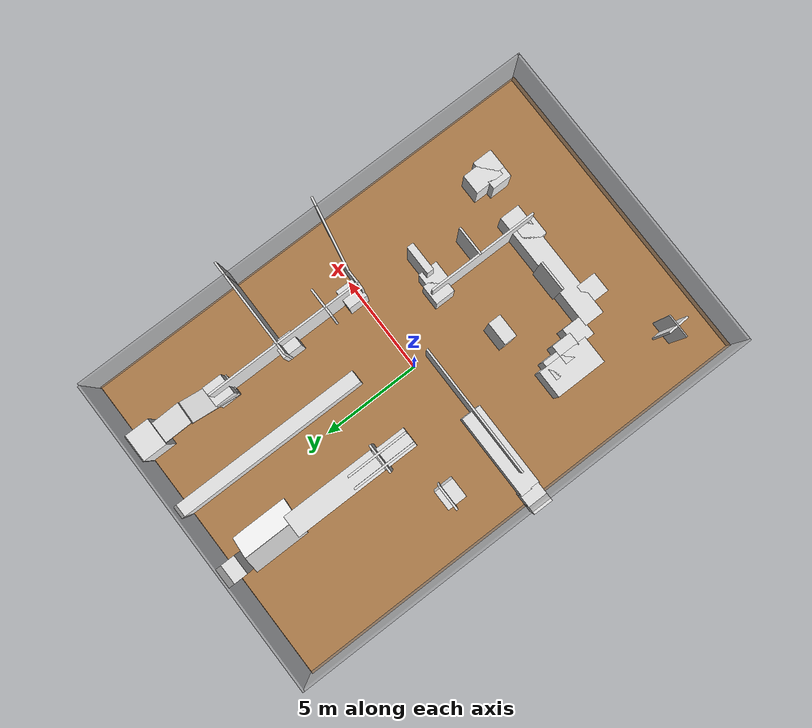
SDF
<sdf version="1.7">
 <world name="default">
  <model name="box_1">
   <pose>0.05 -12.05 1.25 0 -0 0</pose>
   <static>1</static>
   <link name="link">
    <collision name="collision"><geometry><box><size>16.1 0.1 2.5</size></box></geometry></collision>
    <visual name="visual">
     <geometry><box><size>16.1 0.1 2.5</size></box></geometry>
     <material>
      <script><name>Gazebo/GreyTransparent</name><uri>file://media/materials/scripts/gazebo.material</uri></script>
     </material>
    </visual>
   </link>
  </model>
  <model name="box_2">
   <pose>8.06174 -0.026302 1.25 0 -0 0</pose>
   <static>1</static>
   <link name="link">
    <collision name="collision"><geometry><box><size>0.1 24.1 2.5</size></box></geometry></collision>
    <visual name="visual">
     <geometry><box><size>0.1 24.1 2.5</size></box></geometry>
     <material>
      <script><name>Gazebo/GreyTransparent</name><uri>file://media/materials/scripts/gazebo.material</uri></script>
     </material>
    </visual>
   </link>
  </model>
  <model name="box_3">
   <pose>-0.05 12.05 1.25 0 -0 0</pose>
   <static>1</static>
   <link name="link">
    <collision name="collision"><geometry><box><size>16.1 0.1 2.5</size></box></geometry></collision>
    <visual name="visual">
     <geometry><box><size>16.1 0.1 2.5</size></box></geometry>
     <material>
      <script><name>Gazebo/GreyTransparent</name><uri>file://media/materials/scripts/gazebo.material</uri></script>
     </material>
    </visual>
   </link>
  </model>
  <model name="box_4">
   <pose>-8.05 -0.05 1.25 0 -0 0</pose>
   <static>1</static>
   <link name="link">
    <collision name="collision"><geometry><box><size>0.1 24.1 2.5</size></box></geometry></collision>
    <visual name="visual">
     <geometry><box><size>0.1 24.1 2.5</size></box></geometry>
     <material>
      <script><name>Gazebo/GreyTransparent</name><uri>file://media/materials/scripts/gazebo.material</uri></script>
     </material>
    </visual>
   </link>
  </model>
  <model name="box_5">
   <pose>-0.014534 -0.091603 -0.05 0 -0 0</pose>
   <static>1</static>
   <link name="link">
    <collision name="collision"><geometry><box><size>16.2 24.2 0.1</size></box></geometry></collision>
    <visual name="visual">
     <geometry><box><size>16.2 24.2 0.1</size></box></geometry>
     <material>
      <script><name>Gazebo/WoodFloor</name><uri>file://media/materials/scripts/gazebo.material</uri></script>
     </material>
    </visual>
   </link>
  </model>
  <model name="box_8_clone">
   <pose>6.73576 -0.524414 1.25 0 0 -0.191358</pose>
   <static>1</static>
   <link name="link">
    <collision name="collision"><geometry><box><size>3.67087 0.1 2.5</size></box></geometry></collision>
    <visual name="visual">
     <geometry><box><size>3.67087 0.1 2.5</size></box></geometry>
     <material>
      <script><name>Gazebo/White</name><uri>file://media/materials/scripts/gazebo.material</uri></script>
     </material>
    </visual>
   </link>
  </model>
  <model name="box_9_clone_clone_0">
   <pose>-2.15604 -8.36183 0.75 0 -0 0</pose>
   <static>1</static>
   <link name="link">
    <collision name="collision"><geometry><box><size>1 1 1.5</size></box></geometry></collision>
    <visual name="visual">
     <geometry><box><size>1 1 1.5</size></box></geometry>
     <material>
      <script><name>Gazebo/White</name><uri>file://media/materials/scripts/gazebo.material</uri></script>
     </material>
    </visual>
   </link>
  </model>
  <model name="box_9_clone_clone_1">
   <pose>-0.214525 -7.57962 0.75 0 -0 0</pose>
   <static>1</static>
   <link name="link">
    <collision name="collision"><geometry><box><size>6.13337 1 1.5</size></box></geometry></collision>
    <visual name="visual">
     <geometry><box><size>6.13337 1 1.5</size></box></geometry>
     <material>
      <script><name>Gazebo/White</name><uri>file://media/materials/scripts/gazebo.material</uri></script>
     </material>
    </visual>
   </link>
  </model>
  <model name="box_9_clone_clone_2">
   <pose>-3.28595 -6.65197 0.75 0 -0 0</pose>
   <static>1</static>
   <link name="link">
    <collision name="collision"><geometry><box><size>1 1 1.5</size></box></geometry></collision>
    <visual name="visual">
     <geometry><box><size>1 1 1.5</size></box></geometry>
     <material>
      <script><name>Gazebo/White</name><uri>file://media/materials/scripts/gazebo.material</uri></script>
     </material>
    </visual>
   </link>
  </model>
  <model name="box_9_clone_clone_3">
   <pose>5.12025 -8.17677 0.75 0 -0 0</pose>
   <static>1</static>
   <link name="link">
    <collision name="collision"><geometry><box><size>1 1 1.5</size></box></geometry></collision>
    <visual name="visual">
     <geometry><box><size>1 1 1.5</size></box></geometry>
     <material>
      <script><name>Gazebo/White</name><uri>file://media/materials/scripts/gazebo.material</uri></script>
     </material>
    </visual>
   </link>
  </model>
  <model name="box_9_clone_clone_4">
   <pose>4.90057 -7.68592 0.75 0 -0 0</pose>
   <static>1</static>
   <link name="link">
    <collision name="collision"><geometry><box><size>1 1.46842 1.5</size></box></geometry></collision>
    <visual name="visual">
     <geometry><box><size>1 1.46842 1.5</size></box></geometry>
     <material>
      <script><name>Gazebo/White</name><uri>file://media/materials/scripts/gazebo.material</uri></script>
     </material>
    </visual>
   </link>
  </model>
  <model name="box_8_clone_clone_13_clone_clone_clone_clone_0">
   <pose>3.45255 -2.97258 1.25 0 -0 0</pose>
   <static>1</static>
   <link name="link">
    <collision name="collision"><geometry><box><size>1.46461 0.344025 2.5</size></box></geometry></collision>
    <visual name="visual">
     <geometry><box><size>1.46461 0.344025 2.5</size></box></geometry>
     <material>
      <script><name>Gazebo/White</name><uri>file://media/materials/scripts/gazebo.material</uri></script>
     </material>
    </visual>
   </link>
  </model>
  <model name="box_8_clone_clone_11_clone">
   <pose>-1.19486 -3.87817 1.25 0 -0 0</pose>
   <static>1</static>
   <link name="link">
    <collision name="collision"><geometry><box><size>1.16351 0.640021 2.5</size></box></geometry></collision>
    <visual name="visual">
     <geometry><box><size>1.16351 0.640021 2.5</size></box></geometry>
     <material>
      <script><name>Gazebo/White</name><uri>file://media/materials/scripts/gazebo.material</uri></script>
     </material>
    </visual>
   </link>
  </model>
  <model name="box_8_clone_clone_4_clone_2">
   <pose>-5.45875 2.39293 1.25 0 -0 0</pose>
   <static>1</static>
   <link name="link">
    <collision name="collision"><geometry><box><size>1.26584 0.1 2.5</size></box></geometry></collision>
    <visual name="visual">
     <geometry><box><size>1.26584 0.1 2.5</size></box></geometry>
     <material>
      <script><name>Gazebo/White</name><uri>file://media/materials/scripts/gazebo.material</uri></script>
     </material>
    </visual>
   </link>
  </model>
  <model name="box_9_clone_clone_7_clone">
   <pose>-5.47252 2.23106 0.75 0 -0 0</pose>
   <static>1</static>
   <link name="link">
    <collision name="collision"><geometry><box><size>1 1 1.5</size></box></geometry></collision>
    <visual name="visual">
     <geometry><box><size>1 1 1.5</size></box></geometry>
     <material>
      <script><name>Gazebo/White</name><uri>file://media/materials/scripts/gazebo.material</uri></script>
     </material>
    </visual>
   </link>
  </model>
  <model name="box_9_clone_clone_7_clone_clone">
   <pose>-7.89766 -0.627489 0.75 0 -0 0</pose>
   <static>1</static>
   <link name="link">
    <collision name="collision"><geometry><box><size>1 1 1.5</size></box></geometry></collision>
    <visual name="visual">
     <geometry><box><size>1 1 1.5</size></box></geometry>
     <material>
      <script><name>Gazebo/White</name><uri>file://media/materials/scripts/gazebo.material</uri></script>
     </material>
    </visual>
   </link>
  </model>
  <model name="box_9_clone_clone_7_clone_clone_3">
   <pose>-4.34563 -5.4456 0.75 0 -0 0</pose>
   <static>1</static>
   <link name="link">
    <collision name="collision"><geometry><box><size>1.3917 2.57973 1.5</size></box></geometry></collision>
    <visual name="visual">
     <geometry><box><size>1.3917 2.57973 1.5</size></box></geometry>
     <material>
      <script><name>Gazebo/White</name><uri>file://media/materials/scripts/gazebo.material</uri></script>
     </material>
    </visual>
   </link>
  </model>
  <model name="box_9_clone_clone_7_clone_clone_4">
   <pose>-3.89333 -5.04613 0.75 0 -0 0</pose>
   <static>1</static>
   <link name="link">
    <collision name="collision"><geometry><box><size>1 1 1.5</size></box></geometry></collision>
    <visual name="visual">
     <geometry><box><size>1 1 1.5</size></box></geometry>
     <material>
      <script><name>Gazebo/White</name><uri>file://media/materials/scripts/gazebo.material</uri></script>
     </material>
    </visual>
   </link>
  </model>
  <model name="box_9_clone_clone_7_clone_clone_5">
   <pose>-3.58867 -5.82199 0.75 0 -0 0</pose>
   <static>1</static>
   <link name="link">
    <collision name="collision"><geometry><box><size>1 1 1.5</size></box></geometry></collision>
    <visual name="visual">
     <geometry><box><size>1 1 1.5</size></box></geometry>
     <material>
      <script><name>Gazebo/White</name><uri>file://media/materials/scripts/gazebo.material</uri></script>
     </material>
    </visual>
   </link>
  </model>
  <model name="box_9_clone_clone_5_clone_2_clone_0">
   <pose>4.37795 7.57531 0.75 0 -0 0</pose>
   <static>1</static>
   <link name="link">
    <collision name="collision"><geometry><box><size>1.02973 1 1.5</size></box></geometry></collision>
    <visual name="visual">
     <geometry><box><size>1.02973 1 1.5</size></box></geometry>
     <material>
      <script><name>Gazebo/White</name><uri>file://media/materials/scripts/gazebo.material</uri></script>
     </material>
    </visual>
   </link>
  </model>
  <model name="box_9_clone_clone_5_clone_2_clone_0_clone_0">
   <pose>4.61046 -8.1706 0.75 0 -0 0</pose>
   <static>1</static>
   <link name="link">
    <collision name="collision"><geometry><box><size>1 1 1.5</size></box></geometry></collision>
    <visual name="visual">
     <geometry><box><size>1 1 1.5</size></box></geometry>
     <material>
      <script><name>Gazebo/White</name><uri>file://media/materials/scripts/gazebo.material</uri></script>
     </material>
    </visual>
   </link>
  </model>
  <model name="box_6_clone_clone_4_clone">
   <pose>4.47434 10.5847 1.40455 0 -1.3182 1.53996</pose>
   <static>1</static>
   <link name="link">
    <collision name="collision"><geometry><box><size>0.1 1.08009 2.76392</size></box></geometry></collision>
    <visual name="visual">
     <geometry><box><size>0.1 1.08009 2.76392</size></box></geometry>
     <material>
      <script><name>Gazebo/White</name><uri>file://media/materials/scripts/gazebo.material</uri></script>
     </material>
    </visual>
   </link>
  </model>
  <model name="box_9_clone_clone_7_clone_clone_clone">
   <pose>-5.32159 -0.673379 0.75 0 -0 0</pose>
   <static>1</static>
   <link name="link">
    <collision name="collision"><geometry><box><size>4.25949 1 1.5</size></box></geometry></collision>
    <visual name="visual">
     <geometry><box><size>4.25949 1 1.5</size></box></geometry>
     <material>
      <script><name>Gazebo/White</name><uri>file://media/materials/scripts/gazebo.material</uri></script>
     </material>
    </visual>
   </link>
  </model>
  <model name="box_8_clone_clone_3_clone">
   <pose>6.25131 4.20674 1.25 0 -0 0</pose>
   <static>1</static>
   <link name="link">
    <collision name="collision"><geometry><box><size>5.04273 0.1 2.5</size></box></geometry></collision>
    <visual name="visual">
     <geometry><box><size>5.04273 0.1 2.5</size></box></geometry>
     <material>
      <script><name>Gazebo/White</name><uri>file://media/materials/scripts/gazebo.material</uri></script>
     </material>
    </visual>
   </link>
  </model>
  <model name="box_9_clone_clone_7_clone_0">
   <pose>1.15259 7.24946 0.75 0 -0 0</pose>
   <static>1</static>
   <link name="link">
    <collision name="collision"><geometry><box><size>0.641484 9.79262 1.5</size></box></geometry></collision>
    <visual name="visual">
     <geometry><box><size>0.641484 9.79262 1.5</size></box></geometry>
     <material>
      <script><name>Gazebo/White</name><uri>file://media/materials/scripts/gazebo.material</uri></script>
     </material>
    </visual>
   </link>
  </model>
  <model name="box_8_clone_clone_3_clone_clone">
   <pose>-2.60171 9.85734 0.157596 -1.58129 -0.379315 0.005532</pose>
   <static>1</static>
   <link name="link">
    <collision name="collision"><geometry><box><size>0.87469 0.1 2.8877</size></box></geometry></collision>
    <visual name="visual">
     <geometry><box><size>0.87469 0.1 2.8877</size></box></geometry>
     <material>
      <script><name>Gazebo/White</name><uri>file://media/materials/scripts/gazebo.material</uri></script>
     </material>
    </visual>
   </link>
  </model>
  <model name="box_9_clone_clone_9_clone">
   <pose>-2.30467 11.7929 0.75 0 -0 0</pose>
   <static>1</static>
   <link name="link">
    <collision name="collision"><geometry><box><size>1 1 1.5</size></box></geometry></collision>
    <visual name="visual">
     <geometry><box><size>1 1 1.5</size></box></geometry>
     <material>
      <script><name>Gazebo/White</name><uri>file://media/materials/scripts/gazebo.material</uri></script>
     </material>
    </visual>
   </link>
  </model>
  <model name="box_6_clone_clone_3_clone_clone_clone">
   <pose>-2.72273 3.70807 1.25 0 -0 0</pose>
   <static>1</static>
   <link name="link">
    <collision name="collision"><geometry><box><size>0.1 3.23033 2.5</size></box></geometry></collision>
    <visual name="visual">
     <geometry><box><size>0.1 3.23033 2.5</size></box></geometry>
     <material>
      <script><name>Gazebo/White</name><uri>file://media/materials/scripts/gazebo.material</uri></script>
     </material>
    </visual>
   </link>
  </model>
  <model name="box_6_clone_clone_3_clone_clone_clone_clone">
   <pose>4.27871 3.81707 1.25 0 -0 0</pose>
   <static>1</static>
   <link name="link">
    <collision name="collision"><geometry><box><size>0.1 8.11445 2.5</size></box></geometry></collision>
    <visual name="visual">
     <geometry><box><size>0.1 8.11445 2.5</size></box></geometry>
     <material>
      <script><name>Gazebo/White</name><uri>file://media/materials/scripts/gazebo.material</uri></script>
     </material>
    </visual>
   </link>
  </model>
  <model name="box_6_clone_clone_3_clone_clone_clone_clone_0">
   <pose>2.0182 -5.31678 1.25 0 -0 0</pose>
   <static>1</static>
   <link name="link">
    <collision name="collision"><geometry><box><size>0.1 5.60332 2.5</size></box></geometry></collision>
    <visual name="visual">
     <geometry><box><size>0.1 5.60332 2.5</size></box></geometry>
     <material>
      <script><name>Gazebo/White</name><uri>file://media/materials/scripts/gazebo.material</uri></script>
     </material>
    </visual>
   </link>
  </model>
  <model name="box_9_clone_clone_5_clone_2_clone_0_clone_clone">
   <pose>2.02272 -2.91858 0.75 0 -0 0</pose>
   <static>1</static>
   <link name="link">
    <collision name="collision"><geometry><box><size>1 1 1.5</size></box></geometry></collision>
    <visual name="visual">
     <geometry><box><size>1 1 1.5</size></box></geometry>
     <material>
      <script><name>Gazebo/White</name><uri>file://media/materials/scripts/gazebo.material</uri></script>
     </material>
    </visual>
   </link>
  </model>
  <model name="box_8_clone_clone">
   <pose>4.67136 -0.169302 1.25 0 -0 0</pose>
   <static>1</static>
   <link name="link">
    <collision name="collision"><geometry><box><size>1.5 0.1 2.5</size></box></geometry></collision>
    <visual name="visual">
     <geometry><box><size>1.5 0.1 2.5</size></box></geometry>
     <material>
      <script><name>Gazebo/White</name><uri>file://media/materials/scripts/gazebo.material</uri></script>
     </material>
    </visual>
   </link>
  </model>
  <model name="box_9_clone_clone_7_clone_clone_0">
   <pose>-2.40805 3.03977 0.75 0 -0 0</pose>
   <static>1</static>
   <link name="link">
    <collision name="collision"><geometry><box><size>1 1.88415 1.5</size></box></geometry></collision>
    <visual name="visual">
     <geometry><box><size>1 1.88415 1.5</size></box></geometry>
     <material>
      <script><name>Gazebo/White</name><uri>file://media/materials/scripts/gazebo.material</uri></script>
     </material>
    </visual>
   </link>
  </model>
  <model name="box_9_clone_clone_5_clone_2_clone_0_clone_0_clone">
   <pose>1.56966 -7.808 0.75 0 -0 0</pose>
   <static>1</static>
   <link name="link">
    <collision name="collision"><geometry><box><size>1 1 1.5</size></box></geometry></collision>
    <visual name="visual">
     <geometry><box><size>1 1 1.5</size></box></geometry>
     <material>
      <script><name>Gazebo/White</name><uri>file://media/materials/scripts/gazebo.material</uri></script>
     </material>
    </visual>
   </link>
  </model>
  <model name="box_9_clone_clone_5_clone_2_clone_clone_clone_0_clone">
   <pose>4.16141 3.94247 0.75 0 -0 0</pose>
   <static>1</static>
   <link name="link">
    <collision name="collision"><geometry><box><size>0.839425 1 1.5</size></box></geometry></collision>
    <visual name="visual">
     <geometry><box><size>0.839425 1 1.5</size></box></geometry>
     <material>
      <script><name>Gazebo/White</name><uri>file://media/materials/scripts/gazebo.material</uri></script>
     </material>
    </visual>
   </link>
  </model>
  <model name="box_9_clone_clone_5_clone_2_clone_clone_clone_0_clone_clone">
   <pose>4.22761 0.292409 0.75 0 -0 0</pose>
   <static>1</static>
   <link name="link">
    <collision name="collision"><geometry><box><size>1 1 1.5</size></box></geometry></collision>
    <visual name="visual">
     <geometry><box><size>1 1 1.5</size></box></geometry>
     <material>
      <script><name>Gazebo/White</name><uri>file://media/materials/scripts/gazebo.material</uri></script>
     </material>
    </visual>
   </link>
  </model>
  <model name="box_6_clone_clone_3_clone_clone_clone_clone_1">
   <pose>-2.14756 3.67113 1.25 0 -0 0.001144</pose>
   <static>1</static>
   <link name="link">
    <collision name="collision"><geometry><box><size>0.1 3.12165 2.5</size></box></geometry></collision>
    <visual name="visual">
     <geometry><box><size>0.1 3.12165 2.5</size></box></geometry>
     <material>
      <script><name>Gazebo/White</name><uri>file://media/materials/scripts/gazebo.material</uri></script>
     </material>
    </visual>
   </link>
  </model>
  <model name="box_9_clone_clone_8_clone_0_clone">
   <pose>-2.3529 6.21978 0.75 0 -0 0</pose>
   <static>1</static>
   <link name="link">
    <collision name="collision"><geometry><box><size>1.12201 4.75321 1.5</size></box></geometry></collision>
    <visual name="visual">
     <geometry><box><size>1.12201 4.75321 1.5</size></box></geometry>
     <material>
      <script><name>Gazebo/White</name><uri>file://media/materials/scripts/gazebo.material</uri></script>
     </material>
    </visual>
   </link>
  </model>
  <model name="box_8_clone_clone_3_clone_clone_clone">
   <pose>-3.21063 -0.77803 1.25 0 -0 0</pose>
   <static>1</static>
   <link name="link">
    <collision name="collision"><geometry><box><size>6.66898 0.1 2.5</size></box></geometry></collision>
    <visual name="visual">
     <geometry><box><size>6.66898 0.1 2.5</size></box></geometry>
     <material>
      <script><name>Gazebo/White</name><uri>file://media/materials/scripts/gazebo.material</uri></script>
     </material>
    </visual>
   </link>
  </model>
  <model name="box_6_clone_clone_4_clone_clone">
   <pose>4.38248 8.16427 1.1171 0 -1.11157 -1.60232</pose>
   <static>1</static>
   <link name="link">
    <collision name="collision"><geometry><box><size>0.1 1.10854 2.5</size></box></geometry></collision>
    <visual name="visual">
     <geometry><box><size>0.1 1.10854 2.5</size></box></geometry>
     <material>
      <script><name>Gazebo/White</name><uri>file://media/materials/scripts/gazebo.material</uri></script>
     </material>
    </visual>
   </link>
  </model>
  <model name="box_9_clone_clone_5_clone_2_clone_0_clone_0_clone_0">
   <pose>2.56687 -3.08492 0.75 0 -0 0</pose>
   <static>1</static>
   <link name="link">
    <collision name="collision"><geometry><box><size>1 1 1.5</size></box></geometry></collision>
    <visual name="visual">
     <geometry><box><size>1 1 1.5</size></box></geometry>
     <material>
      <script><name>Gazebo/White</name><uri>file://media/materials/scripts/gazebo.material</uri></script>
     </material>
    </visual>
   </link>
  </model>
  <model name="box_8_clone_clone_11_clone_clone">
   <pose>2.72179 -5.17165 1.25 0 -0 0</pose>
   <static>1</static>
   <link name="link">
    <collision name="collision"><geometry><box><size>1.5 0.1 2.5</size></box></geometry></collision>
    <visual name="visual">
     <geometry><box><size>1.5 0.1 2.5</size></box></geometry>
     <material>
      <script><name>Gazebo/White</name><uri>file://media/materials/scripts/gazebo.material</uri></script>
     </material>
    </visual>
   </link>
  </model>
  <model name="box_8_clone_clone_11_clone_clone_0">
   <pose>-5.67141 -10.0374 1.25 0 -0 1.62008</pose>
   <static>1</static>
   <link name="link">
    <collision name="collision"><geometry><box><size>1.06277 0.1 2.5</size></box></geometry></collision>
    <visual name="visual">
     <geometry><box><size>1.06277 0.1 2.5</size></box></geometry>
     <material>
      <script><name>Gazebo/White</name><uri>file://media/materials/scripts/gazebo.material</uri></script>
     </material>
    </visual>
   </link>
  </model>
  <model name="box_8_clone_clone_11_clone_clone_1">
   <pose>-5.71384 -9.99262 1.25 0 -0 0</pose>
   <static>1</static>
   <link name="link">
    <collision name="collision"><geometry><box><size>1.19714 0.0589998 2.5</size></box></geometry></collision>
    <visual name="visual">
     <geometry><box><size>1.19714 0.0589998 2.5</size></box></geometry>
     <material>
      <script><name>Gazebo/White</name><uri>file://media/materials/scripts/gazebo.material</uri></script>
     </material>
    </visual>
   </link>
  </model>
  <model name="box_8_clone_clone_11_clone_clone_1_clone">
   <pose>-0.668626 -7.0443 1.25 0 -0 0</pose>
   <static>1</static>
   <link name="link">
    <collision name="collision"><geometry><box><size>1.5 0.1 2.5</size></box></geometry></collision>
    <visual name="visual">
     <geometry><box><size>1.5 0.1 2.5</size></box></geometry>
     <material>
      <script><name>Gazebo/White</name><uri>file://media/materials/scripts/gazebo.material</uri></script>
     </material>
    </visual>
   </link>
  </model>
  <model name="box_8_clone_clone_4_clone_2_clone">
   <pose>-2.37022 3.68087 1.25 0 -0 0</pose>
   <static>1</static>
   <link name="link">
    <collision name="collision"><geometry><box><size>1.5 0.1 2.5</size></box></geometry></collision>
    <visual name="visual">
     <geometry><box><size>1.5 0.1 2.5</size></box></geometry>
     <material>
      <script><name>Gazebo/White</name><uri>file://media/materials/scripts/gazebo.material</uri></script>
     </material>
    </visual>
   </link>
  </model>
  <model name="box_8_clone_clone_4_clone_2_clone_clone">
   <pose>4.50184 1.59903 1.25 0 -0 0</pose>
   <static>1</static>
   <link name="link">
    <collision name="collision"><geometry><box><size>1.5 0.1 2.5</size></box></geometry></collision>
    <visual name="visual">
     <geometry><box><size>1.5 0.1 2.5</size></box></geometry>
     <material>
      <script><name>Gazebo/White</name><uri>file://media/materials/scripts/gazebo.material</uri></script>
     </material>
    </visual>
   </link>
  </model>
  <model name="box_9_clone_clone_5_clone_2_clone_0_clone">
   <pose>4.56593 11.4103 0.75 0 -0 0</pose>
   <static>1</static>
   <link name="link">
    <collision name="collision"><geometry><box><size>1.40826 1.26912 1.5</size></box></geometry></collision>
    <visual name="visual">
     <geometry><box><size>1.40826 1.26912 1.5</size></box></geometry>
     <material>
      <script><name>Gazebo/White</name><uri>file://media/materials/scripts/gazebo.material</uri></script>
     </material>
    </visual>
   </link>
  </model>
  <model name="box_8_clone_clone_3_clone_clone_clone_0">
   <pose>-1.6685 9.82722 0.139081 -1.58106 0.315795 -0.001542</pose>
   <static>1</static>
   <link name="link">
    <collision name="collision"><geometry><box><size>1.1445 0.1 2.9207</size></box></geometry></collision>
    <visual name="visual">
     <geometry><box><size>1.1445 0.1 2.9207</size></box></geometry>
     <material>
      <script><name>Gazebo/White</name><uri>file://media/materials/scripts/gazebo.material</uri></script>
     </material>
    </visual>
   </link>
  </model>
 </world>
</sdf>
